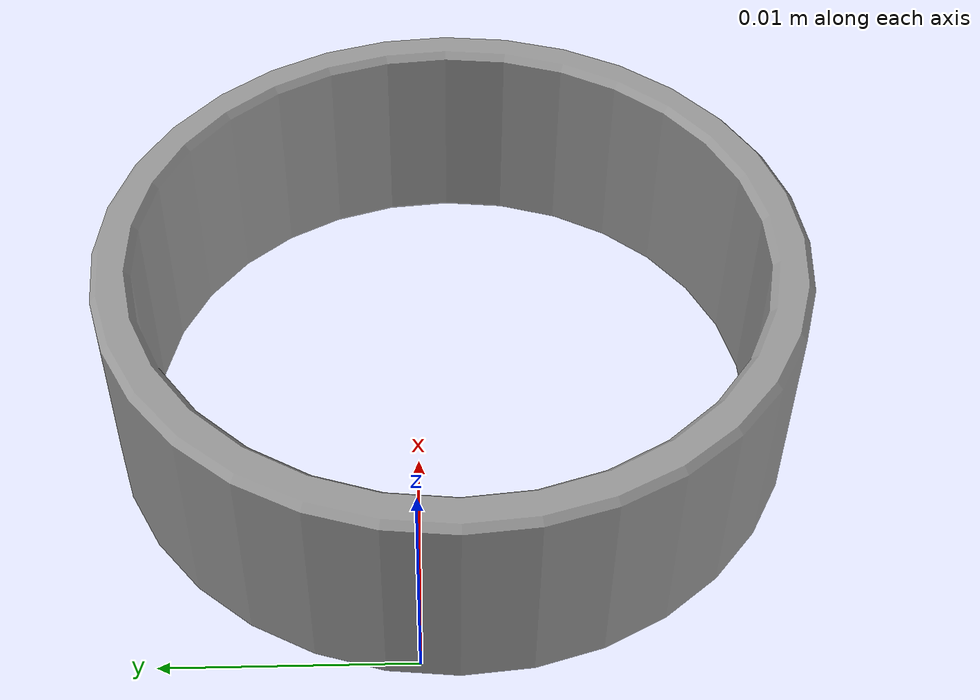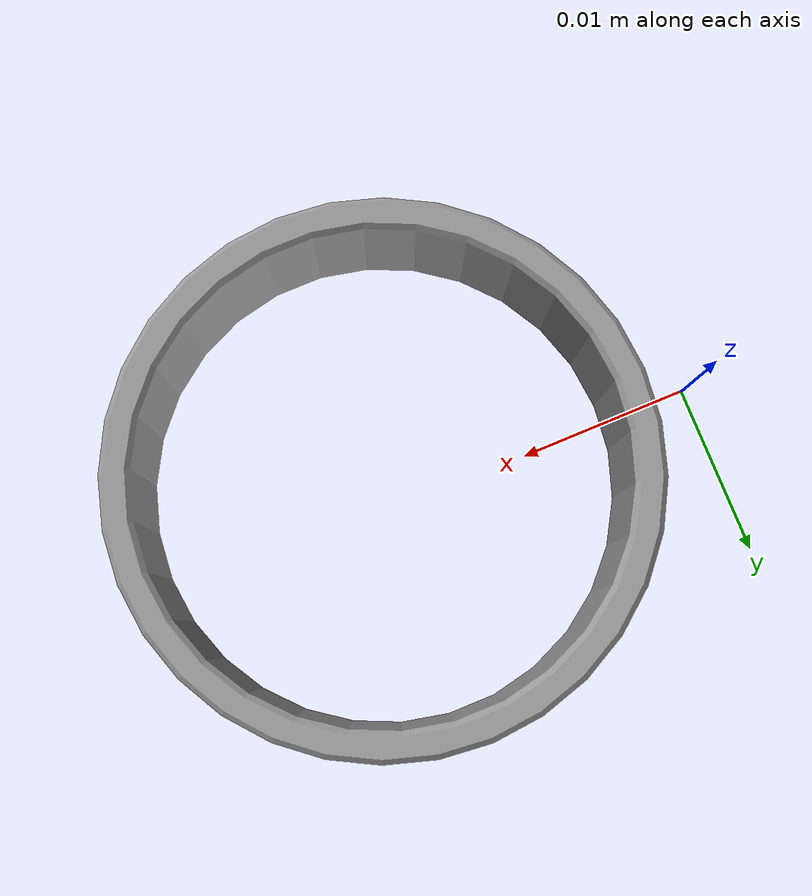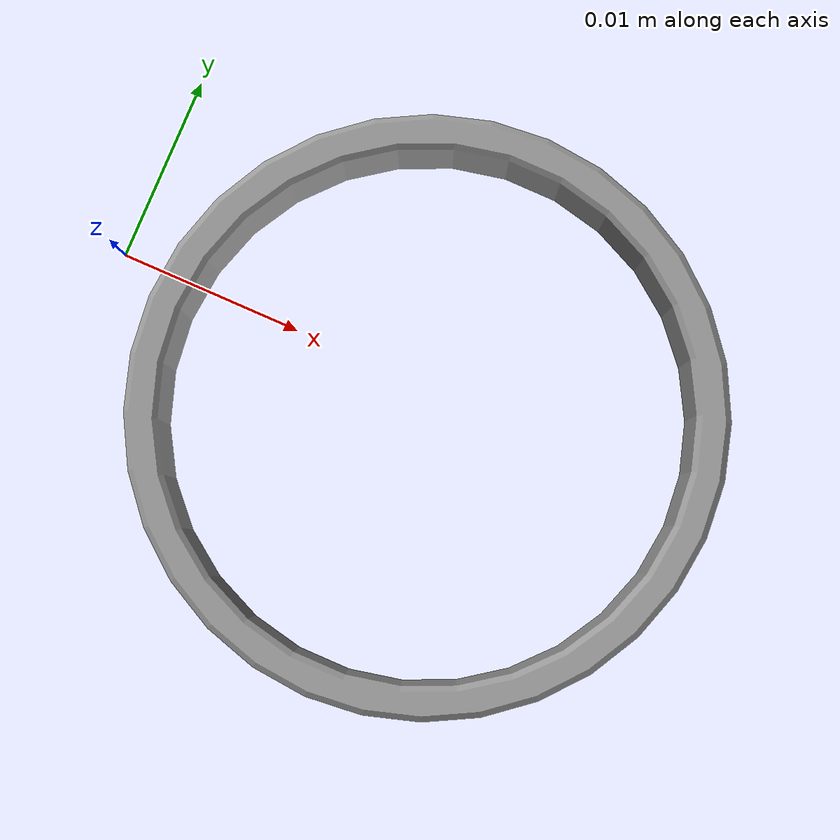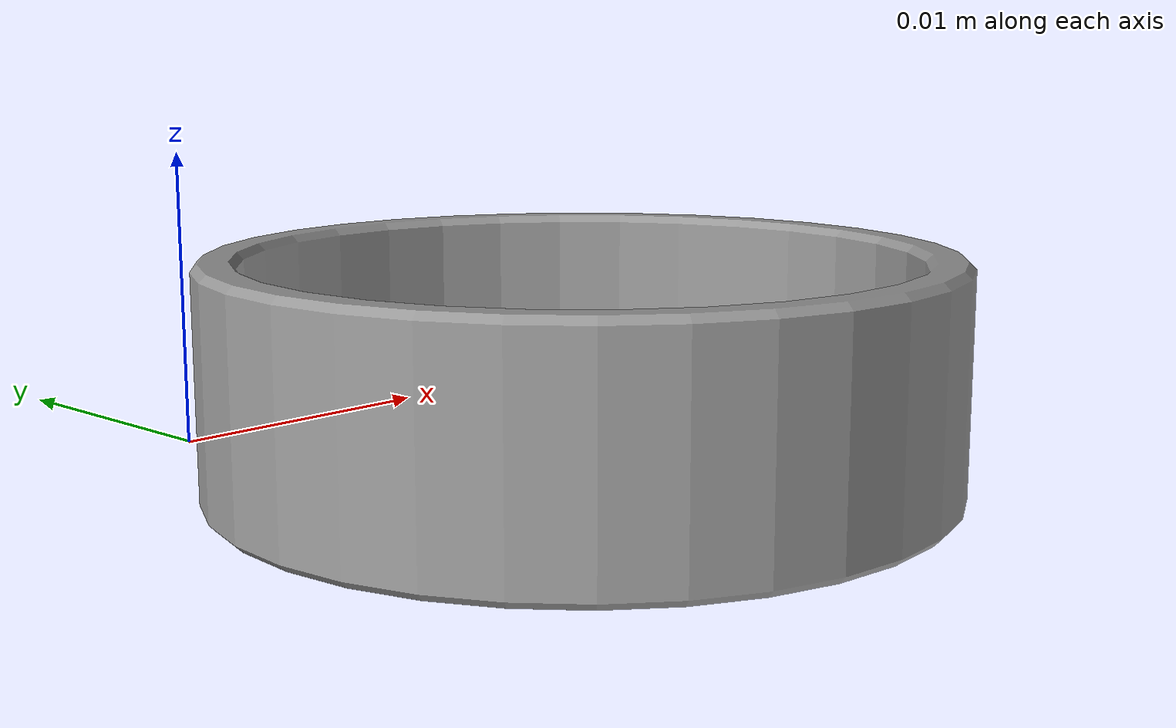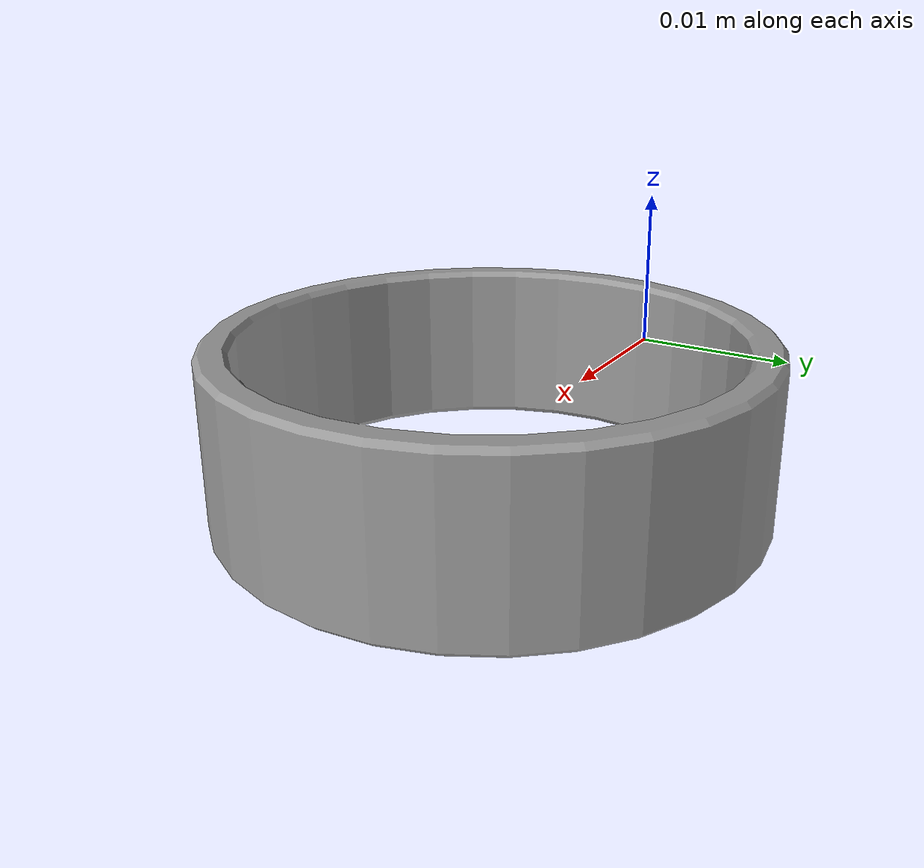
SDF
<?xml version='1.0'?>
<sdf version='1.6'>
  <model name='DISTANCE_TUBE'>
    <link name='link_5'>
      <inertial>
        <mass>0.1</mass>
        <inertia>
          <ixx>0.0005</ixx>
          <ixy>0</ixy>
          <ixz>0</ixz>
          <iyy>0.0005</iyy>
          <iyz>0</iyz>
          <izz>0.0001</izz>
        </inertia>
      </inertial>
      <pose frame=''>0.018258 -0.001605 -0 0 -0 0</pose>
      <visual name='visual'>
        <pose frame=''>0 0 0 0 -0 0</pose>
        <geometry>
          <mesh>
            <uri>model://robocup_meshes/manipulation_objects/rockin/Distance_Tube.stl</uri>
            <scale>1 1 1</scale>
          </mesh>
        </geometry>
        <material>
          <lighting>1</lighting>
          <script>
            <uri>file://media/materials/scripts/gazebo.material</uri>
            <name>Gazebo/Grey</name>
          </script>
        </material>
        <transparency>0</transparency>
        <cast_shadows>1</cast_shadows>
      </visual>
      <collision name='collision'>
        <laser_retro>0</laser_retro>
        <max_contacts>10</max_contacts>
        <pose frame=''>0 0 0 0 -0 0</pose>
        <geometry>
          <mesh>
            <uri>model://robocup_meshes/manipulation_objects/rockin/Distance_Tube.stl</uri>
            <scale>1 1 1</scale>
          </mesh>
        </geometry>
        <surface>
          <friction>
            <ode>
              <mu>1</mu>
              <mu2>1</mu2>
              <fdir1>0 0 0</fdir1>
              <slip1>0</slip1>
              <slip2>0</slip2>
            </ode>
            <torsional>
              <coefficient>1</coefficient>
              <patch_radius>0</patch_radius>
              <surface_radius>0</surface_radius>
              <use_patch_radius>1</use_patch_radius>
              <ode>
                <slip>0</slip>
              </ode>
            </torsional>
          </friction>
          <bounce>
            <restitution_coefficient>0</restitution_coefficient>
            <threshold>1e+06</threshold>
          </bounce>
          <contact>
            <collide_without_contact>0</collide_without_contact>
            <collide_without_contact_bitmask>1</collide_without_contact_bitmask>
            <collide_bitmask>1</collide_bitmask>
            <ode>
              <soft_cfm>0</soft_cfm>
              <soft_erp>0.2</soft_erp>
              <kp>1e+13</kp>
              <kd>1</kd>
              <max_vel>0.01</max_vel>
              <min_depth>0</min_depth>
            </ode>
            <bullet>
              <split_impulse>1</split_impulse>
              <split_impulse_penetration_threshold>-0.01</split_impulse_penetration_threshold>
              <soft_cfm>0</soft_cfm>
              <soft_erp>0.2</soft_erp>
              <kp>1e+13</kp>
              <kd>1</kd>
            </bullet>
          </contact>
        </surface>
      </collision>
    </link>
    <static>0</static>
    <allow_auto_disable>1</allow_auto_disable>
  </model>
</sdf>
